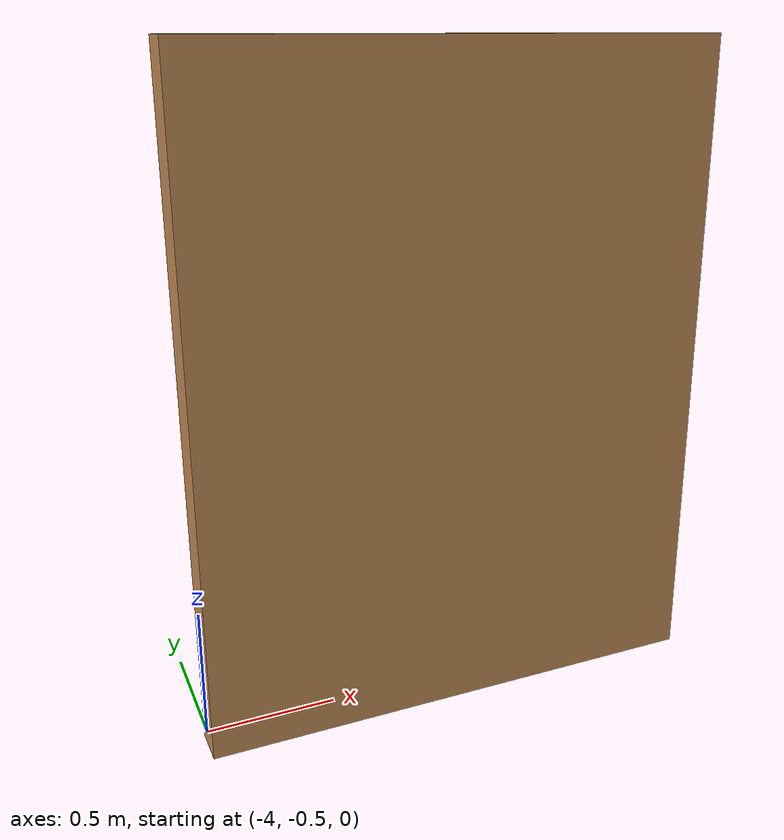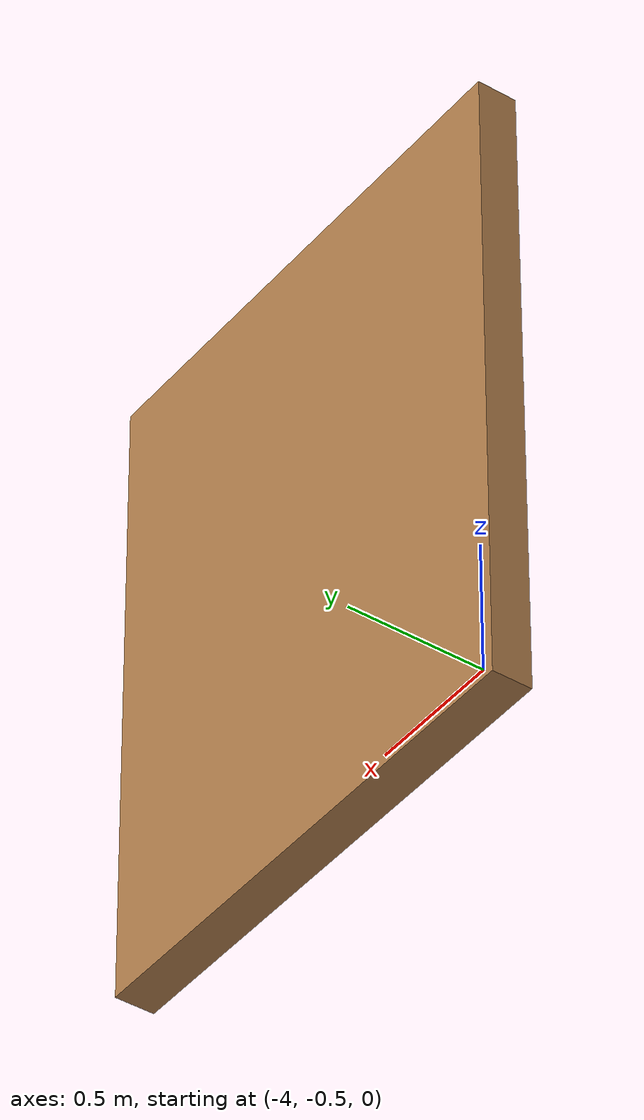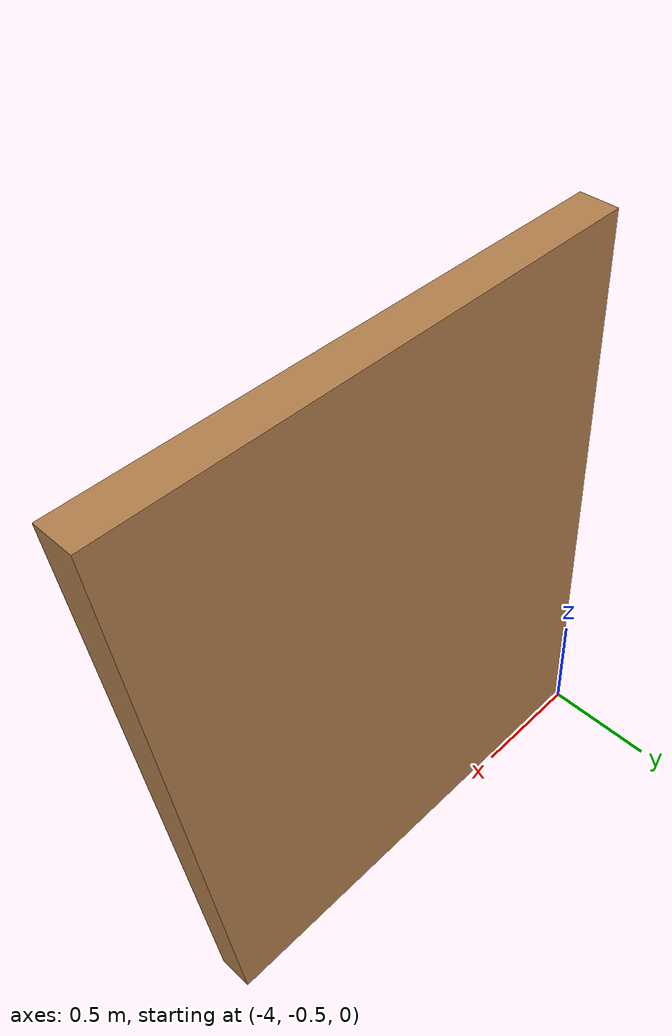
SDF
<?xml version='1.0'?>
<sdf version='1.5'>
  <model name='tr_maze_lay_1'>
    <pose>-3.0161 -0.594162 0 0 -0 0</pose>
    <link name='Wall_21'>
      <collision name='Wall_21_Collision'>
        <geometry>
          <box>
            <size>2 0.15 2.5</size>
          </box>
        </geometry>
        <pose>0 0 1.25 0 -0 0</pose>
      </collision>
      <visual name='Wall_21_Visual'>
        <pose>0 0 1.25 0 -0 0</pose>
        <geometry>
          <box>
            <size>2 0.15 2.5</size>
          </box>
        </geometry>
        <material>
          <script>
            <uri>file://media/materials/scripts/gazebo.material</uri>
            <name>Gazebo/Wood</name>
          </script>
          <ambient>1 1 1 1</ambient>
        </material>
      </visual>
      <pose>0 0 0 0 -0 3.14159</pose>
    </link>
    <static>1</static>
  </model>
</sdf>
